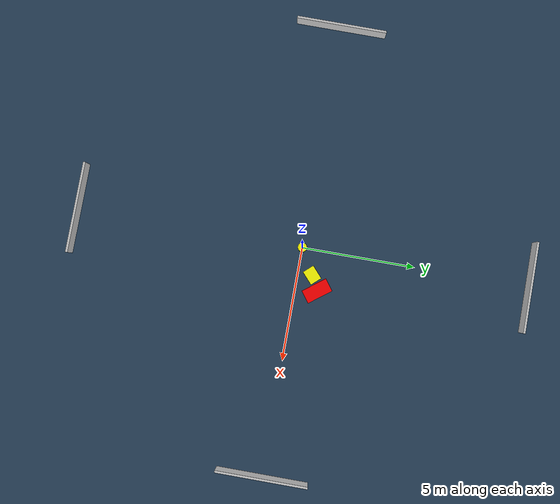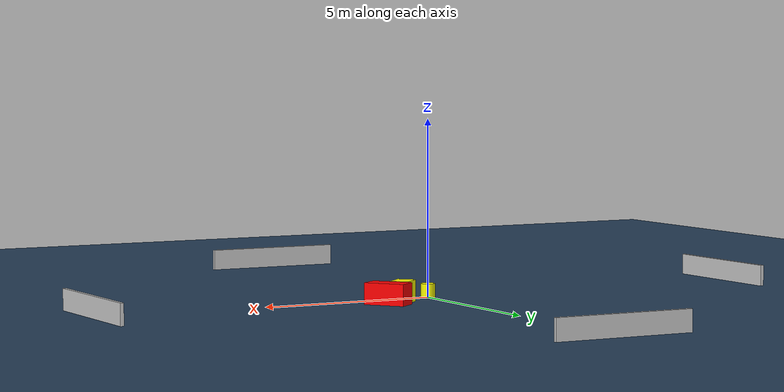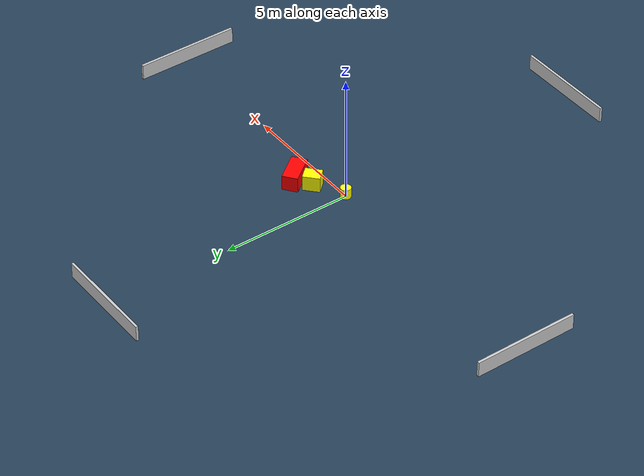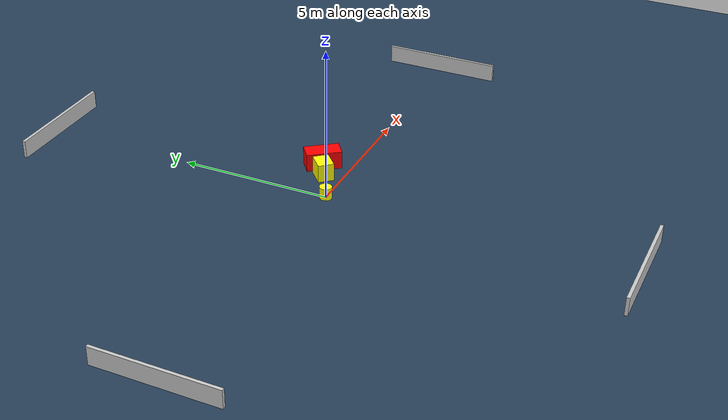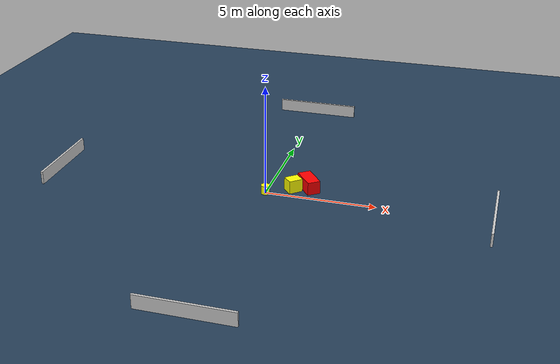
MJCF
<?xml version="1.0" ?>
<mujoco model="generated_environment">
  <option timestep="0.01" integrator="RK4" cone="elliptic"/>
  <default>
    <geom density="1"/>
  </default>
  <asset>
    <texture builtin="gradient" height="3072" name="skybox" rgb1="0.3 0.5 0.7" rgb2="0 0 0" type="skybox" width="512"/>
    <texture builtin="checker" height="300" name="groundplane" rgb1="0.2 0.3 0.4" rgb2="0.1 0.2 0.3" type="2d" width="300"/>
    <material name="groundplane" reflectance="0.2" texrepeat="5 5" texture="groundplane"/>
  </asset>
  <worldbody>
    <light dir="0 0 -1" directional="true" pos="0 0 1.5"/>
    <geom condim="3" friction="0.5 0.005 0.001" material="groundplane" name="floor" pos="0 0 0" size="0 0 0.05" type="plane"/>
    <body name="walls">
      <geom name="wall_1" condim="4" pos="-10.0 0.0 0.3" rgba="0.800000011920929 0.800000011920929 0.800000011920929 1.0" size="0.05 2.0 0.3" type="box"/>
      <geom name="wall_2" condim="4" pos="10.0 0.0 0.3" rgba="0.800000011920929 0.800000011920929 0.800000011920929 1.0" size="0.05 2.0 0.3" type="box"/>
      <geom name="wall_3" condim="4" pos="0.0 -10.0 0.3" rgba="0.800000011920929 0.800000011920929 0.800000011920929 1.0" size="2.0 0.05 0.3" type="box"/>
      <geom name="wall_4" condim="4" pos="0.0 10.0 0.3" rgba="0.800000011920929 0.800000011920929 0.800000011920929 1.0" size="2.0 0.05 0.3" type="box"/>
    </body>
    <body name="robot">
      <joint name="joint_x" type="slide" pos="0 0 0" axis="1 0 0"/>
      <joint name="joint_y" type="slide" pos="0 0 0" axis="0 1 0"/>
      <geom name="robot" type="cylinder" pos="0.0 0.0 0.2" size="0.2 0.2 0.0" mass="5.0" friction="1.0 0.005 0.0001" condim="4" rgba="1.0 1.0 0.0 1.0"/>
    </body>
    <body name="obstacle_1_movable">
      <geom name="obstacle_1_movable" condim="4" pos="1.1253892878613134 0.6247899854593164 0.3" euler="0 0 312.0196495535922" friction="0.0 0.005 0.001" rgba="1.0 1.0 0.0 1.0" size="0.2615473979128711 0.32280910752350833 0.3" type="box" mass="0.1"/>
      <joint type="free"/>
    </body>
    <body name="obstacle_2_static">
      <geom name="obstacle_2_static" condim="4" pos="1.7575004302516186 0.9478742222598368 0.3" euler="0 0 127.08226193596664" friction="0.0 0.005 0.001" rgba="1.0 0.0 0.0 1.0" size="0.5818049408225411 0.29631517902936266 0.3" type="box"/>
    </body>
  </worldbody>
  <actuator>
    <motor name="actuator_x" joint="joint_x" gear="1" ctrlrange="-1 1"/>
    <motor name="actuator_y" joint="joint_y" gear="1" ctrlrange="-1 1"/>
  </actuator>
</mujoco>
